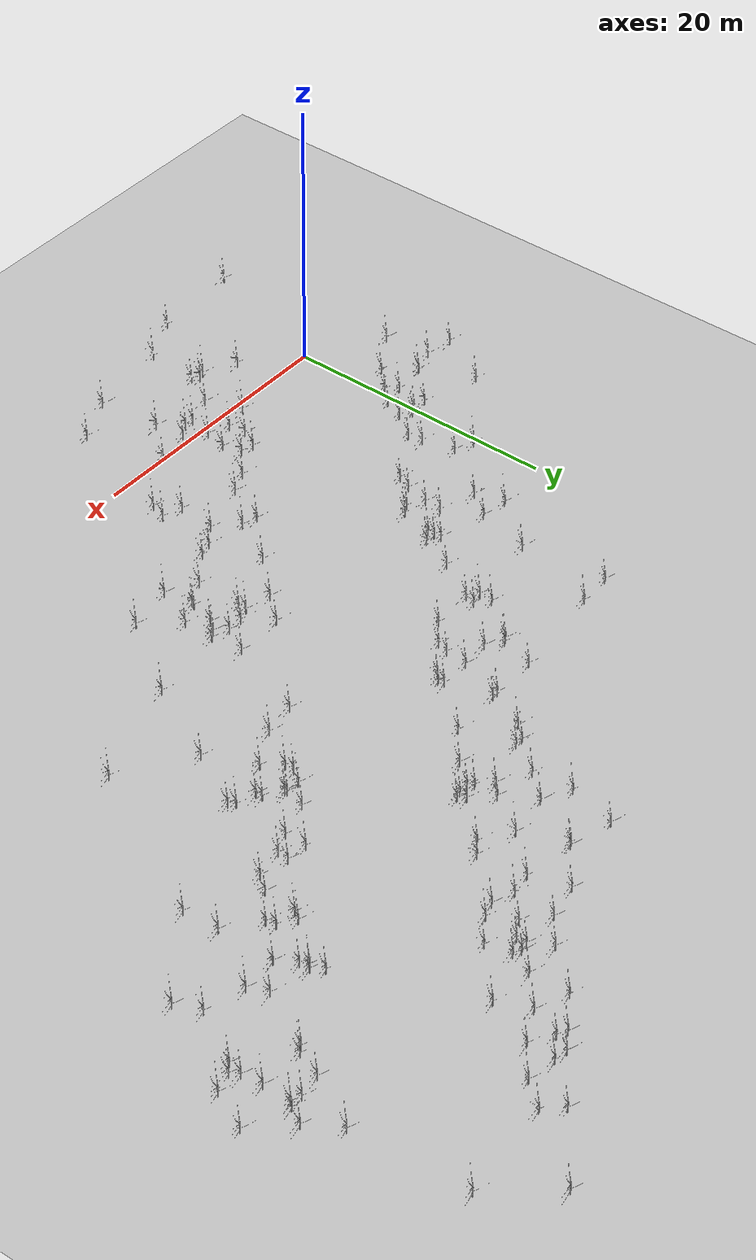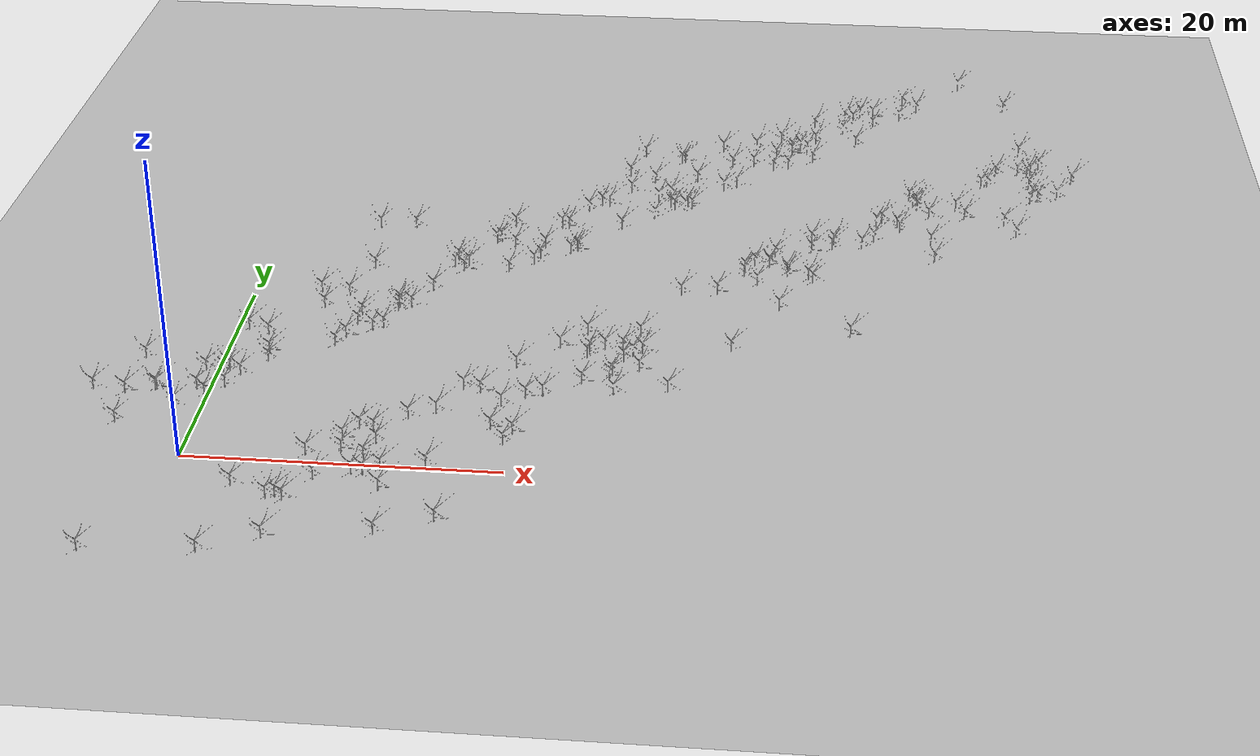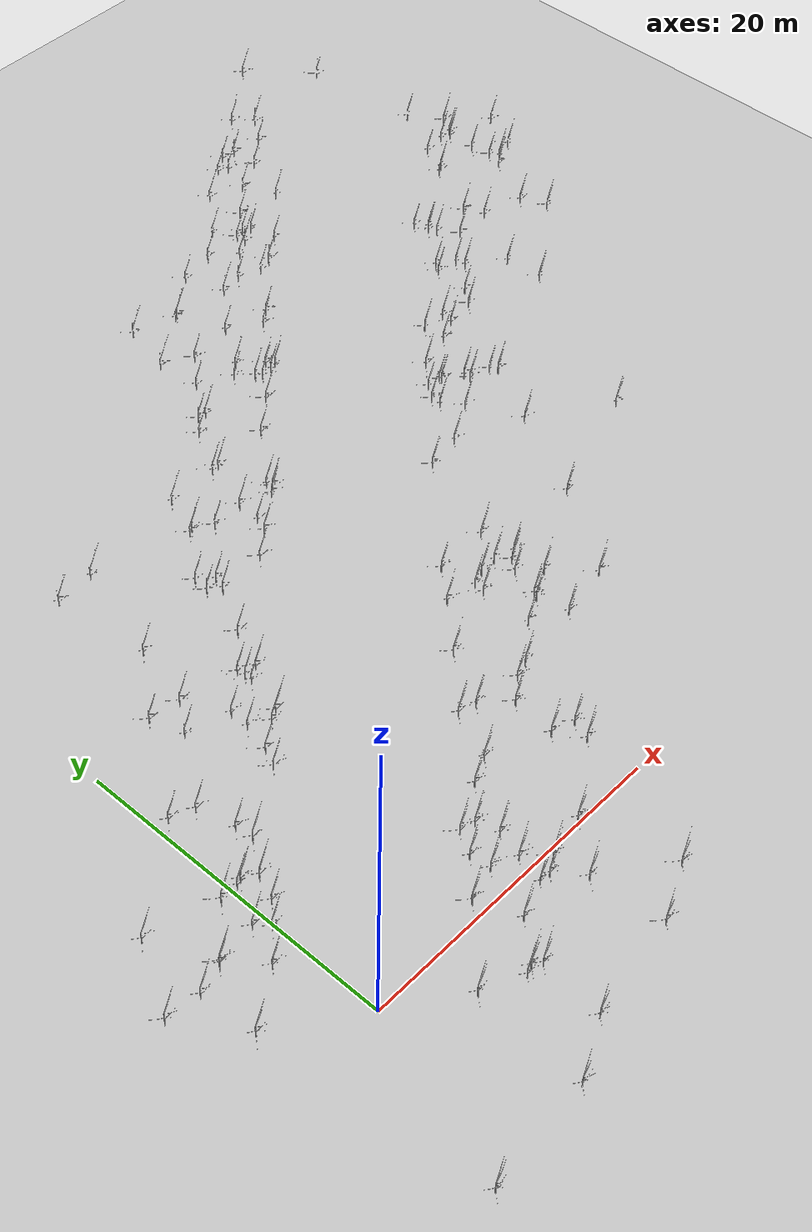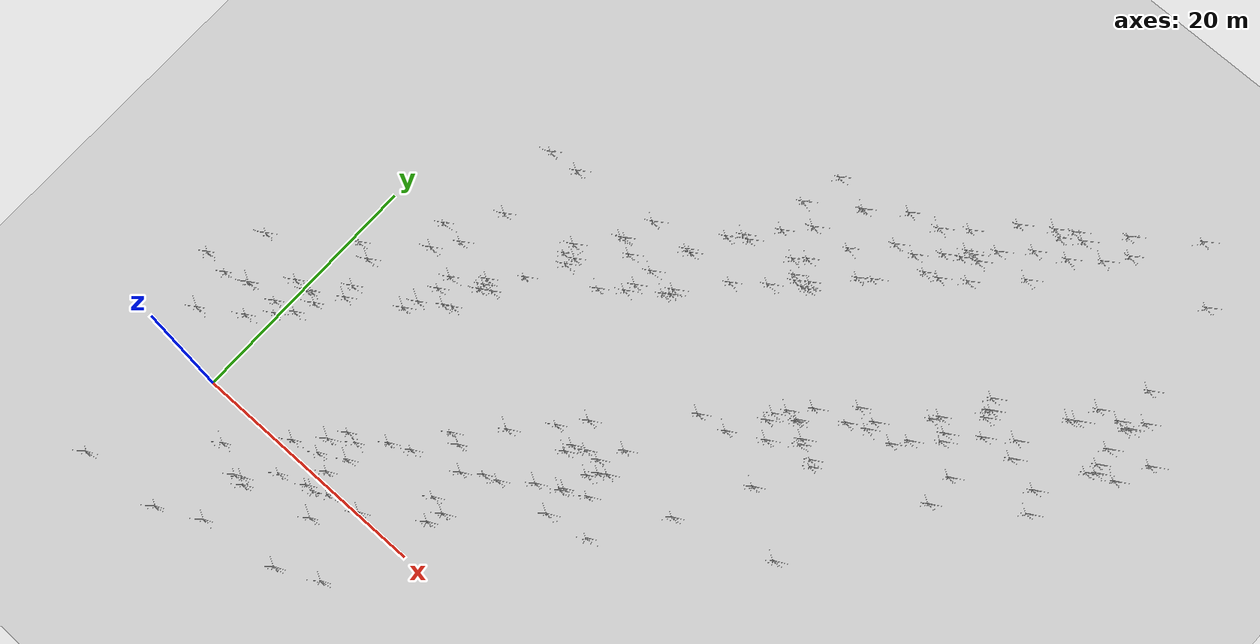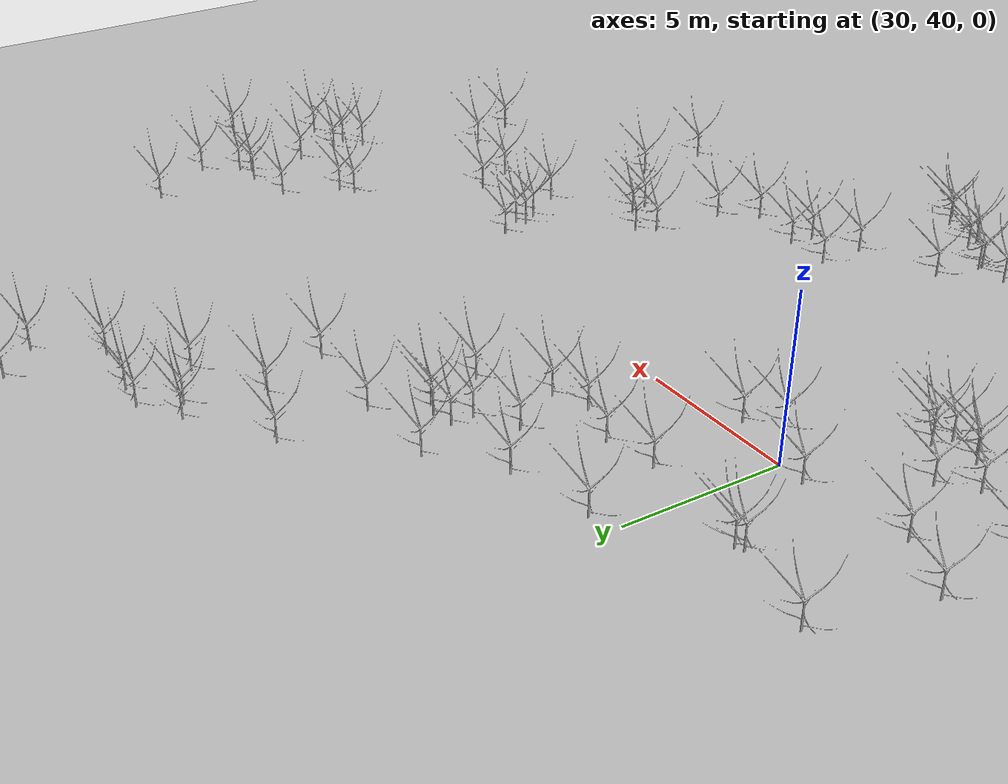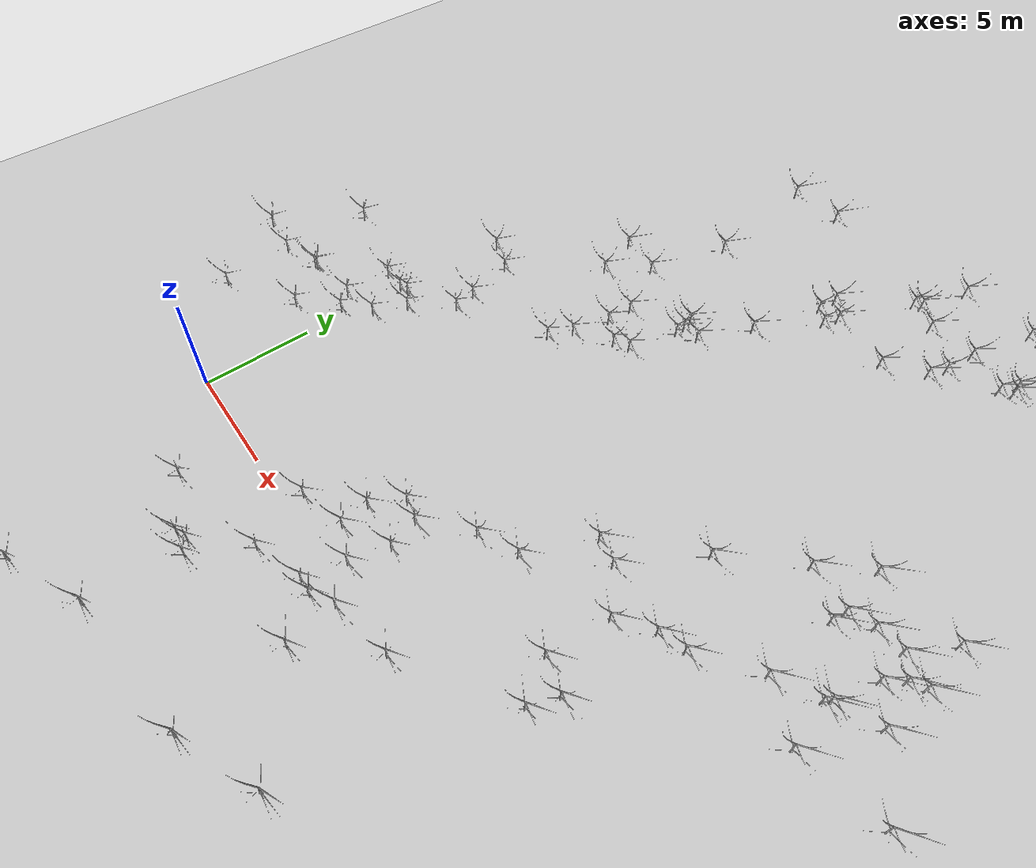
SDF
<?xml version="1.0" ?>
<sdf version="1.5">
  <world name="default">
    <!-- A global light source -->
    <include>
      <uri>model://sun</uri>
    </include>
    <!-- A ground plane -->
    <include>
      <uri>model://ground_plane</uri>
    </include>
    <include>
      <uri>model://road_generation_gazebo/models/bush</uri>
      <pose>0.85655 8.03634 0.0 0.0 0.0 0.0</pose>
    </include>
    <include>
      <uri>model://road_generation_gazebo/models/bush</uri>
      <pose>-7.44468 6.99683 0.0 0.0 0.0 0.0</pose>
    </include>
    <include>
      <uri>model://road_generation_gazebo/models/bush</uri>
      <pose>-5.30893 6.74442 0.0 0.0 0.0 0.0</pose>
    </include>
    <include>
      <uri>model://road_generation_gazebo/models/bush</uri>
      <pose>2.73492 12.48962 0.0 0.0 0.0 0.0</pose>
    </include>
    <include>
      <uri>model://road_generation_gazebo/models/bush</uri>
      <pose>-0.20454 6.94984 0.0 0.0 0.0 0.0</pose>
    </include>
    <include>
      <uri>model://road_generation_gazebo/models/bush</uri>
      <pose>-5.13349 11.07735 0.0 0.0 0.0 0.0</pose>
    </include>
    <include>
      <uri>model://road_generation_gazebo/models/bush</uri>
      <pose>-4.96635 3.32392 0.0 0.0 0.0 0.0</pose>
    </include>
    <include>
      <uri>model://road_generation_gazebo/models/bush</uri>
      <pose>6.8303 13.82701 0.0 0.0 0.0 0.0</pose>
    </include>
    <include>
      <uri>model://road_generation_gazebo/models/bush</uri>
      <pose>-3.39473 7.39495 0.0 0.0 0.0 0.0</pose>
    </include>
    <include>
      <uri>model://road_generation_gazebo/models/bush</uri>
      <pose>-0.82311 9.91168 0.0 0.0 0.0 0.0</pose>
    </include>
    <include>
      <uri>model://road_generation_gazebo/models/bush</uri>
      <pose>-1.77907 5.3702 0.0 0.0 0.0 0.0</pose>
    </include>
    <include>
      <uri>model://road_generation_gazebo/models/bush</uri>
      <pose>-0.86779 7.66798 0.0 0.0 0.0 0.0</pose>
    </include>
    <include>
      <uri>model://road_generation_gazebo/models/bush</uri>
      <pose>-3.4744 7.32409 0.0 0.0 0.0 0.0</pose>
    </include>
    <include>
      <uri>model://road_generation_gazebo/models/bush</uri>
      <pose>2.14931 14.80965 0.0 0.0 0.0 0.0</pose>
    </include>
    <include>
      <uri>model://road_generation_gazebo/models/bush</uri>
      <pose>0.69625 10.07331 0.0 0.0 0.0 0.0</pose>
    </include>
    <include>
      <uri>model://road_generation_gazebo/models/bush</uri>
      <pose>9.61753 2.62548 0.0 0.0 0.0 0.0</pose>
    </include>
    <include>
      <uri>model://road_generation_gazebo/models/bush</uri>
      <pose>7.77911 16.70739 0.0 0.0 0.0 0.0</pose>
    </include>
    <include>
      <uri>model://road_generation_gazebo/models/bush</uri>
      <pose>1.51764 9.55376 0.0 0.0 0.0 0.0</pose>
    </include>
    <include>
      <uri>model://road_generation_gazebo/models/bush</uri>
      <pose>2.91123 11.42212 0.0 0.0 0.0 0.0</pose>
    </include>
    <include>
      <uri>model://road_generation_gazebo/models/bush</uri>
      <pose>0.30414 9.9133 0.0 0.0 0.0 0.0</pose>
    </include>
    <include>
      <uri>model://road_generation_gazebo/models/bush</uri>
      <pose>7.35047 14.92302 0.0 0.0 0.0 0.0</pose>
    </include>
    <include>
      <uri>model://road_generation_gazebo/models/bush</uri>
      <pose>0.70804 15.34237 0.0 0.0 0.0 0.0</pose>
    </include>
    <include>
      <uri>model://road_generation_gazebo/models/bush</uri>
      <pose>13.20872 5.42885 0.0 0.0 0.0 0.0</pose>
    </include>
    <include>
      <uri>model://road_generation_gazebo/models/bush</uri>
      <pose>7.50947 24.49183 0.0 0.0 0.0 0.0</pose>
    </include>
    <include>
      <uri>model://road_generation_gazebo/models/bush</uri>
      <pose>10.1648 19.27426 0.0 0.0 0.0 0.0</pose>
    </include>
    <include>
      <uri>model://road_generation_gazebo/models/bush</uri>
      <pose>7.8337 17.97812 0.0 0.0 0.0 0.0</pose>
    </include>
    <include>
      <uri>model://road_generation_gazebo/models/bush</uri>
      <pose>8.92786 16.02294 0.0 0.0 0.0 0.0</pose>
    </include>
    <include>
      <uri>model://road_generation_gazebo/models/bush</uri>
      <pose>6.48159 20.54515 0.0 0.0 0.0 0.0</pose>
    </include>
    <include>
      <uri>model://road_generation_gazebo/models/bush</uri>
      <pose>4.50534 20.81106 0.0 0.0 0.0 0.0</pose>
    </include>
    <include>
      <uri>model://road_generation_gazebo/models/bush</uri>
      <pose>9.59093 16.3862 0.0 0.0 0.0 0.0</pose>
    </include>
    <include>
      <uri>model://road_generation_gazebo/models/bush</uri>
      <pose>10.99014 19.29535 0.0 0.0 0.0 0.0</pose>
    </include>
    <include>
      <uri>model://road_generation_gazebo/models/bush</uri>
      <pose>13.05231 25.22402 0.0 0.0 0.0 0.0</pose>
    </include>
    <include>
      <uri>model://road_generation_gazebo/models/bush</uri>
      <pose>6.77825 30.59227 0.0 0.0 0.0 0.0</pose>
    </include>
    <include>
      <uri>model://road_generation_gazebo/models/bush</uri>
      <pose>5.11462 18.72388 0.0 0.0 0.0 0.0</pose>
    </include>
    <include>
      <uri>model://road_generation_gazebo/models/bush</uri>
      <pose>10.15929 18.78036 0.0 0.0 0.0 0.0</pose>
    </include>
    <include>
      <uri>model://road_generation_gazebo/models/bush</uri>
      <pose>13.75973 24.67096 0.0 0.0 0.0 0.0</pose>
    </include>
    <include>
      <uri>model://road_generation_gazebo/models/bush</uri>
      <pose>10.04678 19.76317 0.0 0.0 0.0 0.0</pose>
    </include>
    <include>
      <uri>model://road_generation_gazebo/models/bush</uri>
      <pose>13.13009 26.24448 0.0 0.0 0.0 0.0</pose>
    </include>
    <include>
      <uri>model://road_generation_gazebo/models/bush</uri>
      <pose>13.99287 25.44822 0.0 0.0 0.0 0.0</pose>
    </include>
    <include>
      <uri>model://road_generation_gazebo/models/bush</uri>
      <pose>9.31822 30.78177 0.0 0.0 0.0 0.0</pose>
    </include>
    <include>
      <uri>model://road_generation_gazebo/models/bush</uri>
      <pose>12.07951 21.78096 0.0 0.0 0.0 0.0</pose>
    </include>
    <include>
      <uri>model://road_generation_gazebo/models/bush</uri>
      <pose>16.86223 28.47358 0.0 0.0 0.0 0.0</pose>
    </include>
    <include>
      <uri>model://road_generation_gazebo/models/bush</uri>
      <pose>15.77511 29.27655 0.0 0.0 0.0 0.0</pose>
    </include>
    <include>
      <uri>model://road_generation_gazebo/models/bush</uri>
      <pose>16.88537 24.85294 0.0 0.0 0.0 0.0</pose>
    </include>
    <include>
      <uri>model://road_generation_gazebo/models/bush</uri>
      <pose>15.46142 29.08934 0.0 0.0 0.0 0.0</pose>
    </include>
    <include>
      <uri>model://road_generation_gazebo/models/bush</uri>
      <pose>20.89575 27.8812 0.0 0.0 0.0 0.0</pose>
    </include>
    <include>
      <uri>model://road_generation_gazebo/models/bush</uri>
      <pose>18.98807 28.6177 0.0 0.0 0.0 0.0</pose>
    </include>
    <include>
      <uri>model://road_generation_gazebo/models/bush</uri>
      <pose>18.5141 26.11454 0.0 0.0 0.0 0.0</pose>
    </include>
    <include>
      <uri>model://road_generation_gazebo/models/bush</uri>
      <pose>18.83636 26.99864 0.0 0.0 0.0 0.0</pose>
    </include>
    <include>
      <uri>model://road_generation_gazebo/models/bush</uri>
      <pose>24.34461 37.78922 0.0 0.0 0.0 0.0</pose>
    </include>
    <include>
      <uri>model://road_generation_gazebo/models/bush</uri>
      <pose>24.13177 31.98 0.0 0.0 0.0 0.0</pose>
    </include>
    <include>
      <uri>model://road_generation_gazebo/models/bush</uri>
      <pose>27.71001 35.40206 0.0 0.0 0.0 0.0</pose>
    </include>
    <include>
      <uri>model://road_generation_gazebo/models/bush</uri>
      <pose>16.47016 31.67098 0.0 0.0 0.0 0.0</pose>
    </include>
    <include>
      <uri>model://road_generation_gazebo/models/bush</uri>
      <pose>20.33426 31.77242 0.0 0.0 0.0 0.0</pose>
    </include>
    <include>
      <uri>model://road_generation_gazebo/models/bush</uri>
      <pose>22.91788 35.50321 0.0 0.0 0.0 0.0</pose>
    </include>
    <include>
      <uri>model://road_generation_gazebo/models/bush</uri>
      <pose>19.84555 31.74689 0.0 0.0 0.0 0.0</pose>
    </include>
    <include>
      <uri>model://road_generation_gazebo/models/bush</uri>
      <pose>26.38856 33.814 0.0 0.0 0.0 0.0</pose>
    </include>
    <include>
      <uri>model://road_generation_gazebo/models/bush</uri>
      <pose>21.24988 28.66204 0.0 0.0 0.0 0.0</pose>
    </include>
    <include>
      <uri>model://road_generation_gazebo/models/bush</uri>
      <pose>22.35783 35.53018 0.0 0.0 0.0 0.0</pose>
    </include>
    <include>
      <uri>model://road_generation_gazebo/models/bush</uri>
      <pose>27.93751 43.27412 0.0 0.0 0.0 0.0</pose>
    </include>
    <include>
      <uri>model://road_generation_gazebo/models/bush</uri>
      <pose>21.48006 34.56583 0.0 0.0 0.0 0.0</pose>
    </include>
    <include>
      <uri>model://road_generation_gazebo/models/bush</uri>
      <pose>34.70566 42.5455 0.0 0.0 0.0 0.0</pose>
    </include>
    <include>
      <uri>model://road_generation_gazebo/models/bush</uri>
      <pose>28.62461 36.06625 0.0 0.0 0.0 0.0</pose>
    </include>
    <include>
      <uri>model://road_generation_gazebo/models/bush</uri>
      <pose>37.84989 31.14182 0.0 0.0 0.0 0.0</pose>
    </include>
    <include>
      <uri>model://road_generation_gazebo/models/bush</uri>
      <pose>27.40482 35.7416 0.0 0.0 0.0 0.0</pose>
    </include>
    <include>
      <uri>model://road_generation_gazebo/models/bush</uri>
      <pose>28.48033 35.44517 0.0 0.0 0.0 0.0</pose>
    </include>
    <include>
      <uri>model://road_generation_gazebo/models/bush</uri>
      <pose>31.15059 38.7738 0.0 0.0 0.0 0.0</pose>
    </include>
    <include>
      <uri>model://road_generation_gazebo/models/bush</uri>
      <pose>26.45395 36.61618 0.0 0.0 0.0 0.0</pose>
    </include>
    <include>
      <uri>model://road_generation_gazebo/models/bush</uri>
      <pose>27.72424 43.15351 0.0 0.0 0.0 0.0</pose>
    </include>
    <include>
      <uri>model://road_generation_gazebo/models/bush</uri>
      <pose>24.87606 44.00851 0.0 0.0 0.0 0.0</pose>
    </include>
    <include>
      <uri>model://road_generation_gazebo/models/bush</uri>
      <pose>32.05874 39.45399 0.0 0.0 0.0 0.0</pose>
    </include>
    <include>
      <uri>model://road_generation_gazebo/models/bush</uri>
      <pose>25.96933 39.61813 0.0 0.0 0.0 0.0</pose>
    </include>
    <include>
      <uri>model://road_generation_gazebo/models/bush</uri>
      <pose>28.99176 35.60284 0.0 0.0 0.0 0.0</pose>
    </include>
    <include>
      <uri>model://road_generation_gazebo/models/bush</uri>
      <pose>36.01175 46.03598 0.0 0.0 0.0 0.0</pose>
    </include>
    <include>
      <uri>model://road_generation_gazebo/models/bush</uri>
      <pose>35.15995 47.47416 0.0 0.0 0.0 0.0</pose>
    </include>
    <include>
      <uri>model://road_generation_gazebo/models/bush</uri>
      <pose>27.30451 37.37399 0.0 0.0 0.0 0.0</pose>
    </include>
    <include>
      <uri>model://road_generation_gazebo/models/bush</uri>
      <pose>24.01776 40.60212 0.0 0.0 0.0 0.0</pose>
    </include>
    <include>
      <uri>model://road_generation_gazebo/models/bush</uri>
      <pose>31.60725 42.78725 0.0 0.0 0.0 0.0</pose>
    </include>
    <include>
      <uri>model://road_generation_gazebo/models/bush</uri>
      <pose>33.18651 43.07651 0.0 0.0 0.0 0.0</pose>
    </include>
    <include>
      <uri>model://road_generation_gazebo/models/bush</uri>
      <pose>29.0927 40.083 0.0 0.0 0.0 0.0</pose>
    </include>
    <include>
      <uri>model://road_generation_gazebo/models/bush</uri>
      <pose>30.75912 45.4328 0.0 0.0 0.0 0.0</pose>
    </include>
    <include>
      <uri>model://road_generation_gazebo/models/bush</uri>
      <pose>37.18328 45.93482 0.0 0.0 0.0 0.0</pose>
    </include>
    <include>
      <uri>model://road_generation_gazebo/models/bush</uri>
      <pose>37.63093 44.21396 0.0 0.0 0.0 0.0</pose>
    </include>
    <include>
      <uri>model://road_generation_gazebo/models/bush</uri>
      <pose>36.02925 45.33898 0.0 0.0 0.0 0.0</pose>
    </include>
    <include>
      <uri>model://road_generation_gazebo/models/bush</uri>
      <pose>33.29323 45.99018 0.0 0.0 0.0 0.0</pose>
    </include>
    <include>
      <uri>model://road_generation_gazebo/models/bush</uri>
      <pose>35.81077 42.92889 0.0 0.0 0.0 0.0</pose>
    </include>
    <include>
      <uri>model://road_generation_gazebo/models/bush</uri>
      <pose>40.88331 47.28068 0.0 0.0 0.0 0.0</pose>
    </include>
    <include>
      <uri>model://road_generation_gazebo/models/bush</uri>
      <pose>34.8557 44.62937 0.0 0.0 0.0 0.0</pose>
    </include>
    <include>
      <uri>model://road_generation_gazebo/models/bush</uri>
      <pose>39.89984 49.46025 0.0 0.0 0.0 0.0</pose>
    </include>
    <include>
      <uri>model://road_generation_gazebo/models/bush</uri>
      <pose>40.66772 51.58623 0.0 0.0 0.0 0.0</pose>
    </include>
    <include>
      <uri>model://road_generation_gazebo/models/bush</uri>
      <pose>36.65931 46.1834 0.0 0.0 0.0 0.0</pose>
    </include>
    <include>
      <uri>model://road_generation_gazebo/models/bush</uri>
      <pose>44.2934 52.33257 0.0 0.0 0.0 0.0</pose>
    </include>
    <include>
      <uri>model://road_generation_gazebo/models/bush</uri>
      <pose>37.79655 47.54599 0.0 0.0 0.0 0.0</pose>
    </include>
    <include>
      <uri>model://road_generation_gazebo/models/bush</uri>
      <pose>40.01462 51.91287 0.0 0.0 0.0 0.0</pose>
    </include>
    <include>
      <uri>model://road_generation_gazebo/models/bush</uri>
      <pose>41.229 52.71534 0.0 0.0 0.0 0.0</pose>
    </include>
    <include>
      <uri>model://road_generation_gazebo/models/bush</uri>
      <pose>37.67422 50.31475 0.0 0.0 0.0 0.0</pose>
    </include>
    <include>
      <uri>model://road_generation_gazebo/models/bush</uri>
      <pose>42.21629 52.61391 0.0 0.0 0.0 0.0</pose>
    </include>
    <include>
      <uri>model://road_generation_gazebo/models/bush</uri>
      <pose>44.58358 55.23139 0.0 0.0 0.0 0.0</pose>
    </include>
    <include>
      <uri>model://road_generation_gazebo/models/bush</uri>
      <pose>42.21118 50.6678 0.0 0.0 0.0 0.0</pose>
    </include>
    <include>
      <uri>model://road_generation_gazebo/models/bush</uri>
      <pose>52.57973 54.78056 0.0 0.0 0.0 0.0</pose>
    </include>
    <include>
      <uri>model://road_generation_gazebo/models/bush</uri>
      <pose>45.6752 54.07391 0.0 0.0 0.0 0.0</pose>
    </include>
    <include>
      <uri>model://road_generation_gazebo/models/bush</uri>
      <pose>49.13657 58.73501 0.0 0.0 0.0 0.0</pose>
    </include>
    <include>
      <uri>model://road_generation_gazebo/models/bush</uri>
      <pose>-3.2269 -10.18887 0.0 0.0 0.0 0.0</pose>
    </include>
    <include>
      <uri>model://road_generation_gazebo/models/bush</uri>
      <pose>3.92514 -2.88661 0.0 0.0 0.0 0.0</pose>
    </include>
    <include>
      <uri>model://road_generation_gazebo/models/bush</uri>
      <pose>6.30549 -4.00095 0.0 0.0 0.0 0.0</pose>
    </include>
    <include>
      <uri>model://road_generation_gazebo/models/bush</uri>
      <pose>3.57267 -9.6694 0.0 0.0 0.0 0.0</pose>
    </include>
    <include>
      <uri>model://road_generation_gazebo/models/bush</uri>
      <pose>6.83364 -3.79687 0.0 0.0 0.0 0.0</pose>
    </include>
    <include>
      <uri>model://road_generation_gazebo/models/bush</uri>
      <pose>7.33707 -4.14396 0.0 0.0 0.0 0.0</pose>
    </include>
    <include>
      <uri>model://road_generation_gazebo/models/bush</uri>
      <pose>9.77968 1.3673 0.0 0.0 0.0 0.0</pose>
    </include>
    <include>
      <uri>model://road_generation_gazebo/models/bush</uri>
      <pose>6.97823 -7.97293 0.0 0.0 0.0 0.0</pose>
    </include>
    <include>
      <uri>model://road_generation_gazebo/models/bush</uri>
      <pose>16.66097 -5.43733 0.0 0.0 0.0 0.0</pose>
    </include>
    <include>
      <uri>model://road_generation_gazebo/models/bush</uri>
      <pose>13.33626 -7.01286 0.0 0.0 0.0 0.0</pose>
    </include>
    <include>
      <uri>model://road_generation_gazebo/models/bush</uri>
      <pose>7.68731 0.78151 0.0 0.0 0.0 0.0</pose>
    </include>
    <include>
      <uri>model://road_generation_gazebo/models/bush</uri>
      <pose>11.56704 -1.01541 0.0 0.0 0.0 0.0</pose>
    </include>
    <include>
      <uri>model://road_generation_gazebo/models/bush</uri>
      <pose>10.85429 -0.98448 0.0 0.0 0.0 0.0</pose>
    </include>
    <include>
      <uri>model://road_generation_gazebo/models/bush</uri>
      <pose>12.80791 -2.58626 0.0 0.0 0.0 0.0</pose>
    </include>
    <include>
      <uri>model://road_generation_gazebo/models/bush</uri>
      <pose>11.74589 2.42933 0.0 0.0 0.0 0.0</pose>
    </include>
    <include>
      <uri>model://road_generation_gazebo/models/bush</uri>
      <pose>11.27667 0.7606 0.0 0.0 0.0 0.0</pose>
    </include>
    <include>
      <uri>model://road_generation_gazebo/models/bush</uri>
      <pose>10.4073 3.98223 0.0 0.0 0.0 0.0</pose>
    </include>
    <include>
      <uri>model://road_generation_gazebo/models/bush</uri>
      <pose>11.33936 3.76609 0.0 0.0 0.0 0.0</pose>
    </include>
    <include>
      <uri>model://road_generation_gazebo/models/bush</uri>
      <pose>12.52862 -0.44547 0.0 0.0 0.0 0.0</pose>
    </include>
    <include>
      <uri>model://road_generation_gazebo/models/bush</uri>
      <pose>8.67939 -1.75596 0.0 0.0 0.0 0.0</pose>
    </include>
    <include>
      <uri>model://road_generation_gazebo/models/bush</uri>
      <pose>14.85457 6.19542 0.0 0.0 0.0 0.0</pose>
    </include>
    <include>
      <uri>model://road_generation_gazebo/models/bush</uri>
      <pose>15.20386 0.13094 0.0 0.0 0.0 0.0</pose>
    </include>
    <include>
      <uri>model://road_generation_gazebo/models/bush</uri>
      <pose>19.93134 4.24404 0.0 0.0 0.0 0.0</pose>
    </include>
    <include>
      <uri>model://road_generation_gazebo/models/bush</uri>
      <pose>18.80704 7.4221 0.0 0.0 0.0 0.0</pose>
    </include>
    <include>
      <uri>model://road_generation_gazebo/models/bush</uri>
      <pose>17.25728 8.86433 0.0 0.0 0.0 0.0</pose>
    </include>
    <include>
      <uri>model://road_generation_gazebo/models/bush</uri>
      <pose>19.50216 3.03373 0.0 0.0 0.0 0.0</pose>
    </include>
    <include>
      <uri>model://road_generation_gazebo/models/bush</uri>
      <pose>20.19507 8.45104 0.0 0.0 0.0 0.0</pose>
    </include>
    <include>
      <uri>model://road_generation_gazebo/models/bush</uri>
      <pose>18.50011 4.67163 0.0 0.0 0.0 0.0</pose>
    </include>
    <include>
      <uri>model://road_generation_gazebo/models/bush</uri>
      <pose>25.28122 11.4076 0.0 0.0 0.0 0.0</pose>
    </include>
    <include>
      <uri>model://road_generation_gazebo/models/bush</uri>
      <pose>16.1459 9.14228 0.0 0.0 0.0 0.0</pose>
    </include>
    <include>
      <uri>model://road_generation_gazebo/models/bush</uri>
      <pose>21.2761 8.81968 0.0 0.0 0.0 0.0</pose>
    </include>
    <include>
      <uri>model://road_generation_gazebo/models/bush</uri>
      <pose>23.57353 10.55594 0.0 0.0 0.0 0.0</pose>
    </include>
    <include>
      <uri>model://road_generation_gazebo/models/bush</uri>
      <pose>23.31425 16.76766 0.0 0.0 0.0 0.0</pose>
    </include>
    <include>
      <uri>model://road_generation_gazebo/models/bush</uri>
      <pose>27.11746 14.64112 0.0 0.0 0.0 0.0</pose>
    </include>
    <include>
      <uri>model://road_generation_gazebo/models/bush</uri>
      <pose>19.15084 12.15043 0.0 0.0 0.0 0.0</pose>
    </include>
    <include>
      <uri>model://road_generation_gazebo/models/bush</uri>
      <pose>25.8162 15.00296 0.0 0.0 0.0 0.0</pose>
    </include>
    <include>
      <uri>model://road_generation_gazebo/models/bush</uri>
      <pose>21.68362 14.88817 0.0 0.0 0.0 0.0</pose>
    </include>
    <include>
      <uri>model://road_generation_gazebo/models/bush</uri>
      <pose>24.64342 14.93195 0.0 0.0 0.0 0.0</pose>
    </include>
    <include>
      <uri>model://road_generation_gazebo/models/bush</uri>
      <pose>25.98805 13.56167 0.0 0.0 0.0 0.0</pose>
    </include>
    <include>
      <uri>model://road_generation_gazebo/models/bush</uri>
      <pose>25.73723 9.4261 0.0 0.0 0.0 0.0</pose>
    </include>
    <include>
      <uri>model://road_generation_gazebo/models/bush</uri>
      <pose>26.84071 16.85637 0.0 0.0 0.0 0.0</pose>
    </include>
    <include>
      <uri>model://road_generation_gazebo/models/bush</uri>
      <pose>25.43357 11.69419 0.0 0.0 0.0 0.0</pose>
    </include>
    <include>
      <uri>model://road_generation_gazebo/models/bush</uri>
      <pose>26.54866 14.27522 0.0 0.0 0.0 0.0</pose>
    </include>
    <include>
      <uri>model://road_generation_gazebo/models/bush</uri>
      <pose>23.6427 14.53335 0.0 0.0 0.0 0.0</pose>
    </include>
    <include>
      <uri>model://road_generation_gazebo/models/bush</uri>
      <pose>29.11329 22.65644 0.0 0.0 0.0 0.0</pose>
    </include>
    <include>
      <uri>model://road_generation_gazebo/models/bush</uri>
      <pose>29.15722 10.05292 0.0 0.0 0.0 0.0</pose>
    </include>
    <include>
      <uri>model://road_generation_gazebo/models/bush</uri>
      <pose>27.11876 12.40373 0.0 0.0 0.0 0.0</pose>
    </include>
    <include>
      <uri>model://road_generation_gazebo/models/bush</uri>
      <pose>23.55364 13.83313 0.0 0.0 0.0 0.0</pose>
    </include>
    <include>
      <uri>model://road_generation_gazebo/models/bush</uri>
      <pose>32.90064 15.48352 0.0 0.0 0.0 0.0</pose>
    </include>
    <include>
      <uri>model://road_generation_gazebo/models/bush</uri>
      <pose>34.9707 27.32272 0.0 0.0 0.0 0.0</pose>
    </include>
    <include>
      <uri>model://road_generation_gazebo/models/bush</uri>
      <pose>40.69114 18.07172 0.0 0.0 0.0 0.0</pose>
    </include>
    <include>
      <uri>model://road_generation_gazebo/models/bush</uri>
      <pose>21.37141 28.27952 0.0 0.0 0.0 0.0</pose>
    </include>
    <include>
      <uri>model://road_generation_gazebo/models/bush</uri>
      <pose>36.29342 25.97531 0.0 0.0 0.0 0.0</pose>
    </include>
    <include>
      <uri>model://road_generation_gazebo/models/bush</uri>
      <pose>35.85089 21.23208 0.0 0.0 0.0 0.0</pose>
    </include>
    <include>
      <uri>model://road_generation_gazebo/models/bush</uri>
      <pose>31.54432 23.07724 0.0 0.0 0.0 0.0</pose>
    </include>
    <include>
      <uri>model://road_generation_gazebo/models/bush</uri>
      <pose>33.28635 26.45585 0.0 0.0 0.0 0.0</pose>
    </include>
    <include>
      <uri>model://road_generation_gazebo/models/bush</uri>
      <pose>33.28237 25.7709 0.0 0.0 0.0 0.0</pose>
    </include>
    <include>
      <uri>model://road_generation_gazebo/models/bush</uri>
      <pose>34.98003 27.16082 0.0 0.0 0.0 0.0</pose>
    </include>
    <include>
      <uri>model://road_generation_gazebo/models/bush</uri>
      <pose>36.22474 26.42331 0.0 0.0 0.0 0.0</pose>
    </include>
    <include>
      <uri>model://road_generation_gazebo/models/bush</uri>
      <pose>34.2393 24.56829 0.0 0.0 0.0 0.0</pose>
    </include>
    <include>
      <uri>model://road_generation_gazebo/models/bush</uri>
      <pose>33.95737 27.34821 0.0 0.0 0.0 0.0</pose>
    </include>
    <include>
      <uri>model://road_generation_gazebo/models/bush</uri>
      <pose>37.72458 25.6496 0.0 0.0 0.0 0.0</pose>
    </include>
    <include>
      <uri>model://road_generation_gazebo/models/bush</uri>
      <pose>35.3394 28.79083 0.0 0.0 0.0 0.0</pose>
    </include>
    <include>
      <uri>model://road_generation_gazebo/models/bush</uri>
      <pose>38.04018 25.22987 0.0 0.0 0.0 0.0</pose>
    </include>
    <include>
      <uri>model://road_generation_gazebo/models/bush</uri>
      <pose>41.40839 30.60484 0.0 0.0 0.0 0.0</pose>
    </include>
    <include>
      <uri>model://road_generation_gazebo/models/bush</uri>
      <pose>42.26378 31.68073 0.0 0.0 0.0 0.0</pose>
    </include>
    <include>
      <uri>model://road_generation_gazebo/models/bush</uri>
      <pose>37.85609 29.58778 0.0 0.0 0.0 0.0</pose>
    </include>
    <include>
      <uri>model://road_generation_gazebo/models/bush</uri>
      <pose>39.30798 30.24417 0.0 0.0 0.0 0.0</pose>
    </include>
    <include>
      <uri>model://road_generation_gazebo/models/bush</uri>
      <pose>39.40268 31.04072 0.0 0.0 0.0 0.0</pose>
    </include>
    <include>
      <uri>model://road_generation_gazebo/models/bush</uri>
      <pose>46.32025 31.56598 0.0 0.0 0.0 0.0</pose>
    </include>
    <include>
      <uri>model://road_generation_gazebo/models/bush</uri>
      <pose>45.14385 37.40851 0.0 0.0 0.0 0.0</pose>
    </include>
    <include>
      <uri>model://road_generation_gazebo/models/bush</uri>
      <pose>46.51083 29.0249 0.0 0.0 0.0 0.0</pose>
    </include>
    <include>
      <uri>model://road_generation_gazebo/models/bush</uri>
      <pose>42.83293 34.66464 0.0 0.0 0.0 0.0</pose>
    </include>
    <include>
      <uri>model://road_generation_gazebo/models/bush</uri>
      <pose>44.11675 33.28484 0.0 0.0 0.0 0.0</pose>
    </include>
    <include>
      <uri>model://road_generation_gazebo/models/bush</uri>
      <pose>44.87415 38.39768 0.0 0.0 0.0 0.0</pose>
    </include>
    <include>
      <uri>model://road_generation_gazebo/models/bush</uri>
      <pose>48.2477 37.06449 0.0 0.0 0.0 0.0</pose>
    </include>
    <include>
      <uri>model://road_generation_gazebo/models/bush</uri>
      <pose>48.84255 35.76115 0.0 0.0 0.0 0.0</pose>
    </include>
    <include>
      <uri>model://road_generation_gazebo/models/bush</uri>
      <pose>43.94275 33.93082 0.0 0.0 0.0 0.0</pose>
    </include>
    <include>
      <uri>model://road_generation_gazebo/models/bush</uri>
      <pose>46.25911 35.61499 0.0 0.0 0.0 0.0</pose>
    </include>
    <include>
      <uri>model://road_generation_gazebo/models/bush</uri>
      <pose>42.45064 34.103 0.0 0.0 0.0 0.0</pose>
    </include>
    <include>
      <uri>model://road_generation_gazebo/models/bush</uri>
      <pose>52.4401 33.34437 0.0 0.0 0.0 0.0</pose>
    </include>
    <include>
      <uri>model://road_generation_gazebo/models/bush</uri>
      <pose>45.39949 37.63052 0.0 0.0 0.0 0.0</pose>
    </include>
    <include>
      <uri>model://road_generation_gazebo/models/bush</uri>
      <pose>45.44819 36.90176 0.0 0.0 0.0 0.0</pose>
    </include>
    <include>
      <uri>model://road_generation_gazebo/models/bush</uri>
      <pose>53.09823 43.39258 0.0 0.0 0.0 0.0</pose>
    </include>
    <include>
      <uri>model://road_generation_gazebo/models/bush</uri>
      <pose>50.25629 40.99338 0.0 0.0 0.0 0.0</pose>
    </include>
    <include>
      <uri>model://road_generation_gazebo/models/bush</uri>
      <pose>51.67347 35.04796 0.0 0.0 0.0 0.0</pose>
    </include>
    <include>
      <uri>model://road_generation_gazebo/models/bush</uri>
      <pose>53.80848 41.17653 0.0 0.0 0.0 0.0</pose>
    </include>
    <include>
      <uri>model://road_generation_gazebo/models/bush</uri>
      <pose>54.35127 39.18456 0.0 0.0 0.0 0.0</pose>
    </include>
    <include>
      <uri>model://road_generation_gazebo/models/bush</uri>
      <pose>55.76478 39.61482 0.0 0.0 0.0 0.0</pose>
    </include>
    <include>
      <uri>model://road_generation_gazebo/models/bush</uri>
      <pose>53.98434 39.75606 0.0 0.0 0.0 0.0</pose>
    </include>
    <include>
      <uri>model://road_generation_gazebo/models/bush</uri>
      <pose>53.76784 43.15511 0.0 0.0 0.0 0.0</pose>
    </include>
    <include>
      <uri>model://road_generation_gazebo/models/bush</uri>
      <pose>57.03229 42.27183 0.0 0.0 0.0 0.0</pose>
    </include>
    <include>
      <uri>model://road_generation_gazebo/models/bush</uri>
      <pose>51.43856 43.11661 0.0 0.0 0.0 0.0</pose>
    </include>
    <include>
      <uri>model://road_generation_gazebo/models/bush</uri>
      <pose>54.06414 43.46774 0.0 0.0 0.0 0.0</pose>
    </include>
    <include>
      <uri>model://road_generation_gazebo/models/bush</uri>
      <pose>53.74953 38.69984 0.0 0.0 0.0 0.0</pose>
    </include>
    <include>
      <uri>model://road_generation_gazebo/models/bush</uri>
      <pose>53.3549 46.75846 0.0 0.0 0.0 0.0</pose>
    </include>
    <include>
      <uri>model://road_generation_gazebo/models/bush</uri>
      <pose>50.72268 41.30182 0.0 0.0 0.0 0.0</pose>
    </include>
    <include>
      <uri>model://road_generation_gazebo/models/bush</uri>
      <pose>54.73332 44.59959 0.0 0.0 0.0 0.0</pose>
    </include>
  </world>
</sdf>

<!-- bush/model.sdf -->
<sdf version='1.6'>
  <model name='bush'>
    <link name='body'>
      <pose frame=''>0 0 0 0 -0 0</pose>
      <self_collide>0</self_collide>
      <kinematic>0</kinematic>
      <gravity>1</gravity>
      <inertial>
        <mass>1</mass>
        <pose frame=''>0 0 0 0 -0 0</pose>
        <inertia>
          <ixx>1</ixx>
          <ixy>0</ixy>
          <ixz>0</ixz>
          <iyy>1</iyy>
          <iyz>0</iyz>
          <izz>1</izz>
        </inertia>
      </inertial>
      <visual name='visual'>
        <geometry>
          <mesh>
            <uri>model://road_generation_gazebo/collada/bush.dae</uri>
          </mesh>
        </geometry>
        <pose frame=''>0 0 0 0 -0 0</pose>
        <cast_shadows>1</cast_shadows>
        <transparency>0</transparency>
        <material>
          <shader type='vertex'>
            <normal_map>__default__</normal_map>
          </shader>
        </material>
      </visual>
      <collision name='collision'>
        <laser_retro>0</laser_retro>
        <max_contacts>10</max_contacts>
        <pose frame=''>0 0 0 0 -0 0</pose>
        <geometry>
          <mesh>
            <uri>model://road_generation_gazebo/collada/bush_bole.dae</uri>
          </mesh>
        </geometry>
        <surface>
          <friction>
            <ode>
              <mu>1</mu>
              <mu2>1</mu2>
              <fdir1>0 0 0</fdir1>
              <slip1>0</slip1>
              <slip2>0</slip2>
            </ode>
            <torsional>
              <coefficient>1</coefficient>
              <patch_radius>0</patch_radius>
              <surface_radius>0</surface_radius>
              <use_patch_radius>1</use_patch_radius>
              <ode>
                <slip>0</slip>
              </ode>
            </torsional>
          </friction>
          <bounce>
            <restitution_coefficient>0</restitution_coefficient>
            <threshold>1e+06</threshold>
          </bounce>
          <contact>
            <collide_without_contact>0</collide_without_contact>
            <collide_without_contact_bitmask>1</collide_without_contact_bitmask>
            <collide_bitmask>1</collide_bitmask>
            <ode>
              <soft_cfm>0</soft_cfm>
              <soft_erp>0.2</soft_erp>
              <kp>1e+13</kp>
              <kd>1</kd>
              <max_vel>0.01</max_vel>
              <min_depth>0</min_depth>
            </ode>
            <bullet>
              <split_impulse>1</split_impulse>
              <split_impulse_penetration_threshold>-0.01</split_impulse_penetration_threshold>
              <soft_cfm>0</soft_cfm>
              <soft_erp>0.2</soft_erp>
              <kp>1e+13</kp>
              <kd>1</kd>
            </bullet>
          </contact>
        </surface>
      </collision>
    </link>
    <static>1</static>
    <allow_auto_disable>1</allow_auto_disable>
  </model>
</sdf>
